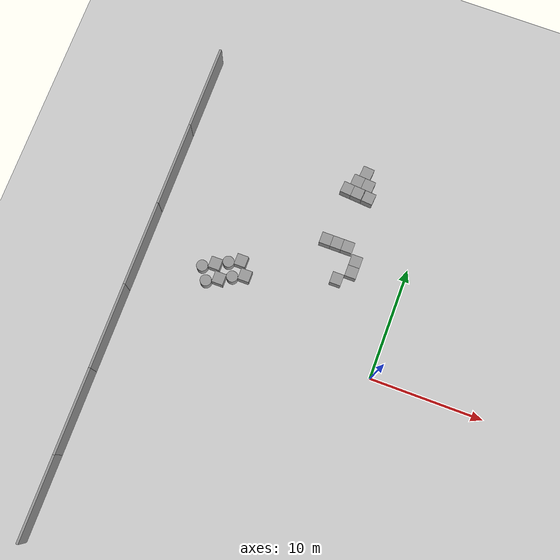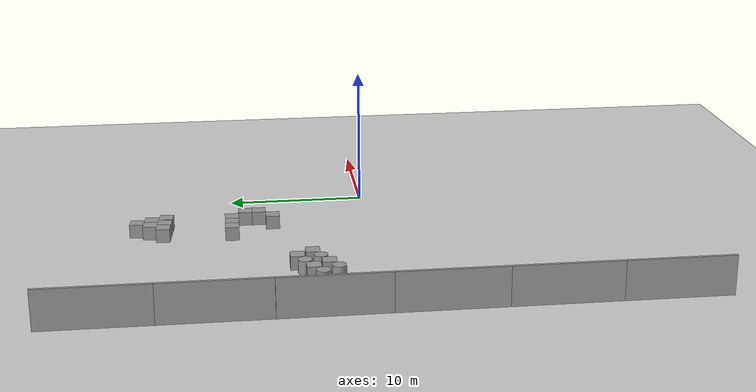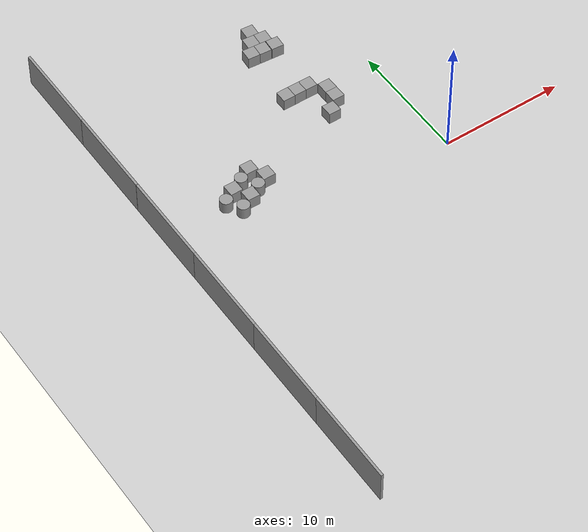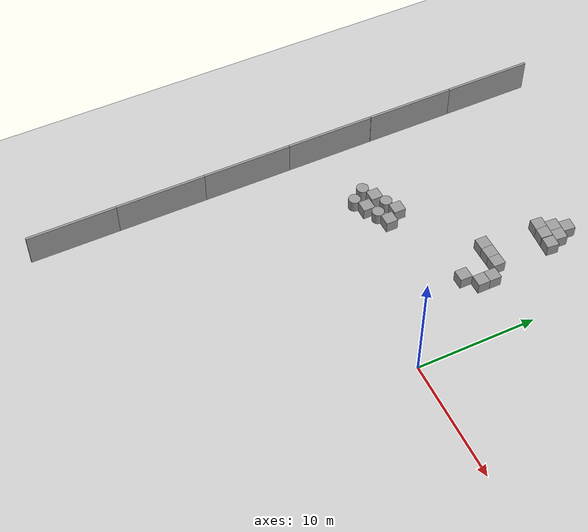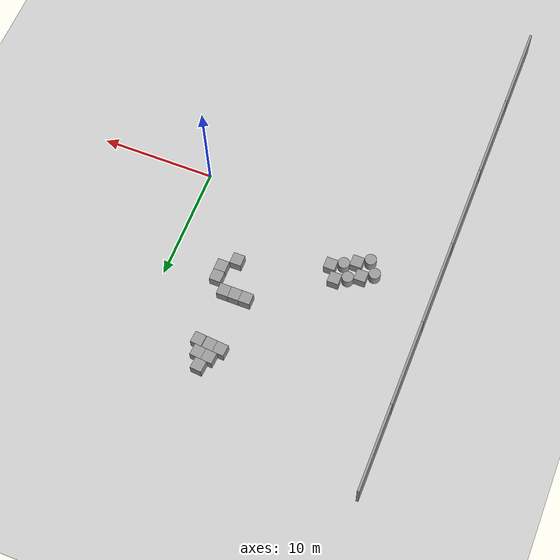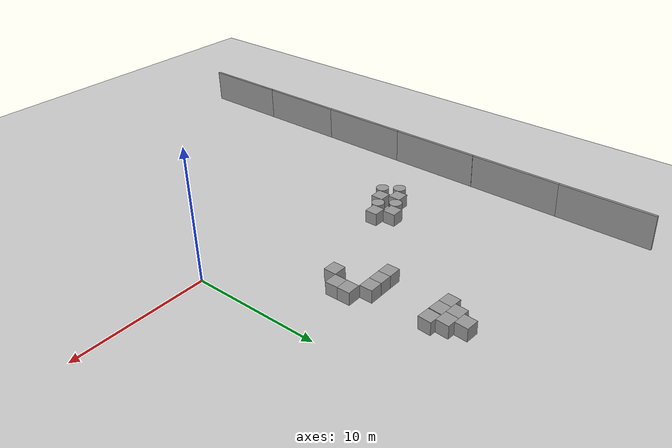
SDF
<sdf version="1.6">
 <world name="default">
  <model name="ground_plane">
   <static>1</static>
   <link name="link">
    <collision name="collision">
     <geometry><plane><normal>0 0 1</normal><size>100 100</size></plane></geometry>
     <surface><friction><ode><mu>100</mu><mu2>50</mu2></ode></friction></surface>
    </collision>
    <visual name="visual">
     <cast_shadows>0</cast_shadows>
     <geometry><plane><normal>0 0 1</normal><size>100 100</size></plane></geometry>
     <material>
      <script><uri>file://media/materials/scripts/gazebo.material</uri><name>Gazebo/Grey</name></script>
     </material>
    </visual>
   </link>
  </model>
  <model name="6walls_clone_clone">
   <model name="grey_wall">
    <static>1</static>
    <link name="link">
     <pose>0 0 1.4 0 -0 0</pose>
     <collision name="collision"><geometry><box><size>7.5 0.2 2.8</size></box></geometry></collision>
     <visual name="visual">
      <cast_shadows>0</cast_shadows>
      <geometry><box><size>7.5 0.2 2.8</size></box></geometry>
      <material>
       <script>
        <uri>model://grey_wall/materials/scripts</uri>
        <uri>model://grey_wall/materials/textures</uri>
        <name>vrc/grey_wall</name>
       </script>
      </material>
     </visual>
    </link>
    <pose>-18.6834 0 0 0 -0 0</pose>
   </model>
   <model name="grey_wall_0">
    <static>1</static>
    <link name="link">
     <pose>0 0 1.4 0 -0 0</pose>
     <collision name="collision"><geometry><box><size>7.5 0.2 2.8</size></box></geometry></collision>
     <visual name="visual">
      <cast_shadows>0</cast_shadows>
      <geometry><box><size>7.5 0.2 2.8</size></box></geometry>
      <material>
       <script>
        <uri>model://grey_wall/materials/scripts</uri>
        <uri>model://grey_wall/materials/textures</uri>
        <name>vrc/grey_wall</name>
       </script>
      </material>
     </visual>
    </link>
    <pose>-11.2658 0 0 0 -0 0</pose>
   </model>
   <model name="grey_wall_1">
    <static>1</static>
    <link name="link">
     <pose>0 0 1.4 0 -0 0</pose>
     <collision name="collision"><geometry><box><size>7.5 0.2 2.8</size></box></geometry></collision>
     <visual name="visual">
      <cast_shadows>0</cast_shadows>
      <geometry><box><size>7.5 0.2 2.8</size></box></geometry>
      <material>
       <script>
        <uri>model://grey_wall/materials/scripts</uri>
        <uri>model://grey_wall/materials/textures</uri>
        <name>vrc/grey_wall</name>
       </script>
      </material>
     </visual>
    </link>
    <pose>-3.76669 0 0 0 -0 0</pose>
   </model>
   <model name="grey_wall_2">
    <static>1</static>
    <link name="link">
     <pose>0 0 1.4 0 -0 0</pose>
     <collision name="collision"><geometry><box><size>7.5 0.2 2.8</size></box></geometry></collision>
     <visual name="visual">
      <cast_shadows>0</cast_shadows>
      <geometry><box><size>7.5 0.2 2.8</size></box></geometry>
      <material>
       <script>
        <uri>model://grey_wall/materials/scripts</uri>
        <uri>model://grey_wall/materials/textures</uri>
        <name>vrc/grey_wall</name>
       </script>
      </material>
     </visual>
    </link>
    <pose>3.73421 0 0 0 -0 0</pose>
   </model>
   <model name="grey_wall_3">
    <static>1</static>
    <link name="link">
     <pose>0 0 1.4 0 -0 0</pose>
     <collision name="collision"><geometry><box><size>7.5 0.2 2.8</size></box></geometry></collision>
     <visual name="visual">
      <cast_shadows>0</cast_shadows>
      <geometry><box><size>7.5 0.2 2.8</size></box></geometry>
      <material>
       <script>
        <uri>model://grey_wall/materials/scripts</uri>
        <uri>model://grey_wall/materials/textures</uri>
        <name>vrc/grey_wall</name>
       </script>
      </material>
     </visual>
    </link>
    <pose>11.2475 0 0 0 -0 0</pose>
   </model>
   <model name="grey_wall_4">
    <static>1</static>
    <link name="link">
     <pose>0 0 1.4 0 -0 0</pose>
     <collision name="collision"><geometry><box><size>7.5 0.2 2.8</size></box></geometry></collision>
     <visual name="visual">
      <cast_shadows>0</cast_shadows>
      <geometry><box><size>7.5 0.2 2.8</size></box></geometry>
      <material>
       <script>
        <uri>model://grey_wall/materials/scripts</uri>
        <uri>model://grey_wall/materials/textures</uri>
        <name>vrc/grey_wall</name>
       </script>
      </material>
     </visual>
    </link>
    <pose>18.7342 0 0 0 -0 0</pose>
   </model>
   <static>0</static>
   <pose>-22 0 0 0 -0 1.5708</pose>
  </model>
  <model name="machin4">
   <link name="link_19">
    <pose>0.127295 1 0 0 -0 0</pose>
    <inertial>
     <mass>1</mass>
     <inertia>
      <ixx>0.166667</ixx>
      <ixy>0</ixy>
      <ixz>0</ixz>
      <iyy>0.166667</iyy>
      <iyz>0</iyz>
      <izz>0.166667</izz>
     </inertia>
    </inertial>
    <visual name="visual">
     <geometry><box><size>1 1 1</size></box></geometry>
     <material>
      <lighting>1</lighting>
      <script><uri>file://media/materials/scripts/gazebo.material</uri><name>Gazebo/Grey</name></script>
      <ambient>0.3 0.3 0.3 1</ambient>
      <diffuse>0.7 0.7 0.7 1</diffuse>
      <specular>0.01 0.01 0.01 1</specular>
      <emissive>0 0 0 1</emissive>
     </material>
    </visual>
    <collision name="collision">
     <geometry><box><size>1 1 1</size></box></geometry>
     <surface>
      <friction>
       <ode><mu>1</mu><mu2>1</mu2><fdir1>0 0 0</fdir1><slip1>0</slip1><slip2>0</slip2></ode>
       <torsional>
        <coefficient>1</coefficient>
        <patch_radius>0</patch_radius>
        <surface_radius>0</surface_radius>
        <use_patch_radius>1</use_patch_radius>
        <ode><slip>0</slip></ode>
       </torsional>
      </friction>
      <bounce><restitution_coefficient>0</restitution_coefficient><threshold>1e+06</threshold></bounce>
      <contact>
       <collide_without_contact>0</collide_without_contact>
       <collide_without_contact_bitmask>1</collide_without_contact_bitmask>
       <collide_bitmask>1</collide_bitmask>
       <ode>
        <soft_cfm>0</soft_cfm>
        <soft_erp>0.2</soft_erp>
        <kp>1e+13</kp>
        <kd>1</kd>
        <max_vel>0.01</max_vel>
        <min_depth>0</min_depth>
       </ode>
       <bullet>
        <split_impulse>1</split_impulse>
        <split_impulse_penetration_threshold>-0.01</split_impulse_penetration_threshold>
        <soft_cfm>0</soft_cfm>
        <soft_erp>0.2</soft_erp>
        <kp>1e+13</kp>
        <kd>1</kd>
       </bullet>
      </contact>
     </surface>
    </collision>
   </link>
   <link name="link_20">
    <pose>-0.843938 1 0 0 -0 0</pose>
    <inertial>
     <mass>1</mass>
     <inertia>
      <ixx>0.166667</ixx>
      <ixy>0</ixy>
      <ixz>0</ixz>
      <iyy>0.166667</iyy>
      <iyz>0</iyz>
      <izz>0.166667</izz>
     </inertia>
    </inertial>
    <visual name="visual">
     <geometry><box><size>1 1 1</size></box></geometry>
     <material>
      <lighting>1</lighting>
      <script><uri>file://media/materials/scripts/gazebo.material</uri><name>Gazebo/Grey</name></script>
      <ambient>0.3 0.3 0.3 1</ambient>
      <diffuse>0.7 0.7 0.7 1</diffuse>
      <specular>0.01 0.01 0.01 1</specular>
      <emissive>0 0 0 1</emissive>
     </material>
    </visual>
    <collision name="collision">
     <geometry><box><size>1 1 1</size></box></geometry>
     <surface>
      <friction>
       <ode><mu>1</mu><mu2>1</mu2><fdir1>0 0 0</fdir1><slip1>0</slip1><slip2>0</slip2></ode>
       <torsional>
        <coefficient>1</coefficient>
        <patch_radius>0</patch_radius>
        <surface_radius>0</surface_radius>
        <use_patch_radius>1</use_patch_radius>
        <ode><slip>0</slip></ode>
       </torsional>
      </friction>
      <bounce><restitution_coefficient>0</restitution_coefficient><threshold>1e+06</threshold></bounce>
      <contact>
       <collide_without_contact>0</collide_without_contact>
       <collide_without_contact_bitmask>1</collide_without_contact_bitmask>
       <collide_bitmask>1</collide_bitmask>
       <ode>
        <soft_cfm>0</soft_cfm>
        <soft_erp>0.2</soft_erp>
        <kp>1e+13</kp>
        <kd>1</kd>
        <max_vel>0.01</max_vel>
        <min_depth>0</min_depth>
       </ode>
       <bullet>
        <split_impulse>1</split_impulse>
        <split_impulse_penetration_threshold>-0.01</split_impulse_penetration_threshold>
        <soft_cfm>0</soft_cfm>
        <soft_erp>0.2</soft_erp>
        <kp>1e+13</kp>
        <kd>1</kd>
       </bullet>
      </contact>
     </surface>
    </collision>
   </link>
   <link name="link_21">
    <pose>1.19236 0 0 0 -0 0</pose>
    <inertial>
     <mass>1</mass>
     <inertia>
      <ixx>0.166667</ixx>
      <ixy>0</ixy>
      <ixz>0</ixz>
      <iyy>0.166667</iyy>
      <iyz>0</iyz>
      <izz>0.166667</izz>
     </inertia>
    </inertial>
    <visual name="visual">
     <geometry><box><size>1 1 1</size></box></geometry>
     <material>
      <lighting>1</lighting>
      <script><uri>file://media/materials/scripts/gazebo.material</uri><name>Gazebo/Grey</name></script>
      <ambient>0.3 0.3 0.3 1</ambient>
      <diffuse>0.7 0.7 0.7 1</diffuse>
      <specular>0.01 0.01 0.01 1</specular>
      <emissive>0 0 0 1</emissive>
     </material>
    </visual>
    <collision name="collision">
     <geometry><box><size>1 1 1</size></box></geometry>
     <surface>
      <friction>
       <ode><mu>1</mu><mu2>1</mu2><fdir1>0 0 0</fdir1><slip1>0</slip1><slip2>0</slip2></ode>
       <torsional>
        <coefficient>1</coefficient>
        <patch_radius>0</patch_radius>
        <surface_radius>0</surface_radius>
        <use_patch_radius>1</use_patch_radius>
        <ode><slip>0</slip></ode>
       </torsional>
      </friction>
      <bounce><restitution_coefficient>0</restitution_coefficient><threshold>1e+06</threshold></bounce>
      <contact>
       <collide_without_contact>0</collide_without_contact>
       <collide_without_contact_bitmask>1</collide_without_contact_bitmask>
       <collide_bitmask>1</collide_bitmask>
       <ode>
        <soft_cfm>0</soft_cfm>
        <soft_erp>0.2</soft_erp>
        <kp>1e+13</kp>
        <kd>1</kd>
        <max_vel>0.01</max_vel>
        <min_depth>0</min_depth>
       </ode>
       <bullet>
        <split_impulse>1</split_impulse>
        <split_impulse_penetration_threshold>-0.01</split_impulse_penetration_threshold>
        <soft_cfm>0</soft_cfm>
        <soft_erp>0.2</soft_erp>
        <kp>1e+13</kp>
        <kd>1</kd>
       </bullet>
      </contact>
     </surface>
    </collision>
   </link>
   <link name="link_22">
    <pose>1.19278 -1 0 0 -0 0</pose>
    <inertial>
     <mass>1</mass>
     <inertia>
      <ixx>0.166667</ixx>
      <ixy>0</ixy>
      <ixz>0</ixz>
      <iyy>0.166667</iyy>
      <iyz>0</iyz>
      <izz>0.166667</izz>
     </inertia>
    </inertial>
    <visual name="visual">
     <geometry><box><size>1 1 1</size></box></geometry>
     <material>
      <lighting>1</lighting>
      <script><uri>file://media/materials/scripts/gazebo.material</uri><name>Gazebo/Grey</name></script>
      <ambient>0.3 0.3 0.3 1</ambient>
      <diffuse>0.7 0.7 0.7 1</diffuse>
      <specular>0.01 0.01 0.01 1</specular>
      <emissive>0 0 0 1</emissive>
     </material>
    </visual>
    <collision name="collision">
     <geometry><box><size>1 1 1</size></box></geometry>
     <surface>
      <friction>
       <ode><mu>1</mu><mu2>1</mu2><fdir1>0 0 0</fdir1><slip1>0</slip1><slip2>0</slip2></ode>
       <torsional>
        <coefficient>1</coefficient>
        <patch_radius>0</patch_radius>
        <surface_radius>0</surface_radius>
        <use_patch_radius>1</use_patch_radius>
        <ode><slip>0</slip></ode>
       </torsional>
      </friction>
      <bounce><restitution_coefficient>0</restitution_coefficient><threshold>1e+06</threshold></bounce>
      <contact>
       <collide_without_contact>0</collide_without_contact>
       <collide_without_contact_bitmask>1</collide_without_contact_bitmask>
       <collide_bitmask>1</collide_bitmask>
       <ode>
        <soft_cfm>0</soft_cfm>
        <soft_erp>0.2</soft_erp>
        <kp>1e+13</kp>
        <kd>1</kd>
        <max_vel>0.01</max_vel>
        <min_depth>0</min_depth>
       </ode>
       <bullet>
        <split_impulse>1</split_impulse>
        <split_impulse_penetration_threshold>-0.01</split_impulse_penetration_threshold>
        <soft_cfm>0</soft_cfm>
        <soft_erp>0.2</soft_erp>
        <kp>1e+13</kp>
        <kd>1</kd>
       </bullet>
      </contact>
     </surface>
    </collision>
   </link>
   <link name="link_23">
    <pose>0.174071 -2 0 0 -0 0</pose>
    <inertial>
     <mass>1</mass>
     <inertia>
      <ixx>0.166667</ixx>
      <ixy>0</ixy>
      <ixz>0</ixz>
      <iyy>0.166667</iyy>
      <iyz>0</iyz>
      <izz>0.166667</izz>
     </inertia>
    </inertial>
    <visual name="visual">
     <geometry><box><size>1 1 1</size></box></geometry>
     <material>
      <lighting>1</lighting>
      <script><uri>file://media/materials/scripts/gazebo.material</uri><name>Gazebo/Grey</name></script>
      <ambient>0.3 0.3 0.3 1</ambient>
      <diffuse>0.7 0.7 0.7 1</diffuse>
      <specular>0.01 0.01 0.01 1</specular>
      <emissive>0 0 0 1</emissive>
     </material>
    </visual>
    <collision name="collision">
     <geometry><box><size>1 1 1</size></box></geometry>
     <surface>
      <friction>
       <ode><mu>1</mu><mu2>1</mu2><fdir1>0 0 0</fdir1><slip1>0</slip1><slip2>0</slip2></ode>
       <torsional>
        <coefficient>1</coefficient>
        <patch_radius>0</patch_radius>
        <surface_radius>0</surface_radius>
        <use_patch_radius>1</use_patch_radius>
        <ode><slip>0</slip></ode>
       </torsional>
      </friction>
      <bounce><restitution_coefficient>0</restitution_coefficient><threshold>1e+06</threshold></bounce>
      <contact>
       <collide_without_contact>0</collide_without_contact>
       <collide_without_contact_bitmask>1</collide_without_contact_bitmask>
       <collide_bitmask>1</collide_bitmask>
       <ode>
        <soft_cfm>0</soft_cfm>
        <soft_erp>0.2</soft_erp>
        <kp>1e+13</kp>
        <kd>1</kd>
        <max_vel>0.01</max_vel>
        <min_depth>0</min_depth>
       </ode>
       <bullet>
        <split_impulse>1</split_impulse>
        <split_impulse_penetration_threshold>-0.01</split_impulse_penetration_threshold>
        <soft_cfm>0</soft_cfm>
        <soft_erp>0.2</soft_erp>
        <kp>1e+13</kp>
        <kd>1</kd>
       </bullet>
      </contact>
     </surface>
    </collision>
   </link>
   <link name="link_24">
    <pose>-1.84258 1 0 0 -0 0</pose>
    <inertial>
     <mass>1</mass>
     <inertia>
      <ixx>0.166667</ixx>
      <ixy>0</ixy>
      <ixz>0</ixz>
      <iyy>0.166667</iyy>
      <iyz>0</iyz>
      <izz>0.166667</izz>
     </inertia>
    </inertial>
    <visual name="visual">
     <geometry><box><size>1 1 1</size></box></geometry>
     <material>
      <lighting>1</lighting>
      <script><uri>file://media/materials/scripts/gazebo.material</uri><name>Gazebo/Grey</name></script>
      <ambient>0.3 0.3 0.3 1</ambient>
      <diffuse>0.7 0.7 0.7 1</diffuse>
      <specular>0.01 0.01 0.01 1</specular>
      <emissive>0 0 0 1</emissive>
     </material>
    </visual>
    <collision name="collision">
     <geometry><box><size>1 1 1</size></box></geometry>
     <surface>
      <friction>
       <ode><mu>1</mu><mu2>1</mu2><fdir1>0 0 0</fdir1><slip1>0</slip1><slip2>0</slip2></ode>
       <torsional>
        <coefficient>1</coefficient>
        <patch_radius>0</patch_radius>
        <surface_radius>0</surface_radius>
        <use_patch_radius>1</use_patch_radius>
        <ode><slip>0</slip></ode>
       </torsional>
      </friction>
      <bounce><restitution_coefficient>0</restitution_coefficient><threshold>1e+06</threshold></bounce>
      <contact>
       <collide_without_contact>0</collide_without_contact>
       <collide_without_contact_bitmask>1</collide_without_contact_bitmask>
       <collide_bitmask>1</collide_bitmask>
       <ode>
        <soft_cfm>0</soft_cfm>
        <soft_erp>0.2</soft_erp>
        <kp>1e+13</kp>
        <kd>1</kd>
        <max_vel>0.01</max_vel>
        <min_depth>0</min_depth>
       </ode>
       <bullet>
        <split_impulse>1</split_impulse>
        <split_impulse_penetration_threshold>-0.01</split_impulse_penetration_threshold>
        <soft_cfm>0</soft_cfm>
        <soft_erp>0.2</soft_erp>
        <kp>1e+13</kp>
        <kd>1</kd>
       </bullet>
      </contact>
     </surface>
    </collision>
   </link>
   <static>0</static>
   <pose>-5.69507 9 0.5 0 -0 0</pose>
  </model>
  <model name="machine6_clone">
   <link name="link_32">
    <pose>-0.5 -0.233197 0 0 -0 0</pose>
    <inertial>
     <mass>1</mass>
     <inertia>
      <ixx>0.166667</ixx>
      <ixy>0</ixy>
      <ixz>0</ixz>
      <iyy>0.166667</iyy>
      <iyz>0</iyz>
      <izz>0.166667</izz>
     </inertia>
    </inertial>
    <visual name="visual">
     <geometry><box><size>1 1 1</size></box></geometry>
     <material>
      <lighting>1</lighting>
      <script><uri>file://media/materials/scripts/gazebo.material</uri><name>Gazebo/Grey</name></script>
      <ambient>0.3 0.3 0.3 1</ambient>
      <diffuse>0.7 0.7 0.7 1</diffuse>
      <specular>0.01 0.01 0.01 1</specular>
      <emissive>0 0 0 1</emissive>
     </material>
    </visual>
    <collision name="collision">
     <geometry><box><size>1 1 1</size></box></geometry>
     <surface>
      <friction>
       <ode><mu>1</mu><mu2>1</mu2><fdir1>0 0 0</fdir1><slip1>0</slip1><slip2>0</slip2></ode>
       <torsional>
        <coefficient>1</coefficient>
        <patch_radius>0</patch_radius>
        <surface_radius>0</surface_radius>
        <use_patch_radius>1</use_patch_radius>
        <ode><slip>0</slip></ode>
       </torsional>
      </friction>
      <bounce><restitution_coefficient>0</restitution_coefficient><threshold>1e+06</threshold></bounce>
      <contact>
       <collide_without_contact>0</collide_without_contact>
       <collide_without_contact_bitmask>1</collide_without_contact_bitmask>
       <collide_bitmask>1</collide_bitmask>
       <ode>
        <soft_cfm>0</soft_cfm>
        <soft_erp>0.2</soft_erp>
        <kp>1e+13</kp>
        <kd>1</kd>
        <max_vel>0.01</max_vel>
        <min_depth>0</min_depth>
       </ode>
       <bullet>
        <split_impulse>1</split_impulse>
        <split_impulse_penetration_threshold>-0.01</split_impulse_penetration_threshold>
        <soft_cfm>0</soft_cfm>
        <soft_erp>0.2</soft_erp>
        <kp>1e+13</kp>
        <kd>1</kd>
       </bullet>
      </contact>
     </surface>
    </collision>
   </link>
   <link name="link_33">
    <pose>0.5 0.283618 0 0 -0 0</pose>
    <inertial>
     <mass>1</mass>
     <inertia><ixx>0.145833</ixx><ixy>0</ixy><ixz>0</ixz><iyy>0.145833</iyy><iyz>0</iyz><izz>0.125</izz></inertia>
    </inertial>
    <visual name="visual">
     <geometry><cylinder><radius>0.5</radius><length>1</length></cylinder></geometry>
     <material>
      <lighting>1</lighting>
      <script><uri>file://media/materials/scripts/gazebo.material</uri><name>Gazebo/Grey</name></script>
      <ambient>0.3 0.3 0.3 1</ambient>
      <diffuse>0.7 0.7 0.7 1</diffuse>
      <specular>0.01 0.01 0.01 1</specular>
      <emissive>0 0 0 1</emissive>
     </material>
    </visual>
    <collision name="collision">
     <geometry><cylinder><radius>0.5</radius><length>1</length></cylinder></geometry>
     <surface>
      <friction>
       <ode><mu>1</mu><mu2>1</mu2><fdir1>0 0 0</fdir1><slip1>0</slip1><slip2>0</slip2></ode>
       <torsional>
        <coefficient>1</coefficient>
        <patch_radius>0</patch_radius>
        <surface_radius>0</surface_radius>
        <use_patch_radius>1</use_patch_radius>
        <ode><slip>0</slip></ode>
       </torsional>
      </friction>
      <bounce><restitution_coefficient>0</restitution_coefficient><threshold>1e+06</threshold></bounce>
      <contact>
       <collide_without_contact>0</collide_without_contact>
       <collide_without_contact_bitmask>1</collide_without_contact_bitmask>
       <collide_bitmask>1</collide_bitmask>
       <ode>
        <soft_cfm>0</soft_cfm>
        <soft_erp>0.2</soft_erp>
        <kp>1e+13</kp>
        <kd>1</kd>
        <max_vel>0.01</max_vel>
        <min_depth>0</min_depth>
       </ode>
       <bullet>
        <split_impulse>1</split_impulse>
        <split_impulse_penetration_threshold>-0.01</split_impulse_penetration_threshold>
        <soft_cfm>0</soft_cfm>
        <soft_erp>0.2</soft_erp>
        <kp>1e+13</kp>
        <kd>1</kd>
       </bullet>
      </contact>
     </surface>
    </collision>
   </link>
   <link name="link_34">
    <pose>-1.5 -0.817224 0 0 -0 0</pose>
    <inertial>
     <mass>1</mass>
     <inertia><ixx>0.145833</ixx><ixy>0</ixy><ixz>0</ixz><iyy>0.145833</iyy><iyz>0</iyz><izz>0.125</izz></inertia>
    </inertial>
    <visual name="visual">
     <geometry><cylinder><radius>0.5</radius><length>1</length></cylinder></geometry>
     <material>
      <lighting>1</lighting>
      <script><uri>file://media/materials/scripts/gazebo.material</uri><name>Gazebo/Grey</name></script>
      <ambient>0.3 0.3 0.3 1</ambient>
      <diffuse>0.7 0.7 0.7 1</diffuse>
      <specular>0.01 0.01 0.01 1</specular>
      <emissive>0 0 0 1</emissive>
     </material>
    </visual>
    <collision name="collision">
     <geometry><cylinder><radius>0.5</radius><length>1</length></cylinder></geometry>
     <surface>
      <friction>
       <ode><mu>1</mu><mu2>1</mu2><fdir1>0 0 0</fdir1><slip1>0</slip1><slip2>0</slip2></ode>
       <torsional>
        <coefficient>1</coefficient>
        <patch_radius>0</patch_radius>
        <surface_radius>0</surface_radius>
        <use_patch_radius>1</use_patch_radius>
        <ode><slip>0</slip></ode>
       </torsional>
      </friction>
      <bounce><restitution_coefficient>0</restitution_coefficient><threshold>1e+06</threshold></bounce>
      <contact>
       <collide_without_contact>0</collide_without_contact>
       <collide_without_contact_bitmask>1</collide_without_contact_bitmask>
       <collide_bitmask>1</collide_bitmask>
       <ode>
        <soft_cfm>0</soft_cfm>
        <soft_erp>0.2</soft_erp>
        <kp>1e+13</kp>
        <kd>1</kd>
        <max_vel>0.01</max_vel>
        <min_depth>0</min_depth>
       </ode>
       <bullet>
        <split_impulse>1</split_impulse>
        <split_impulse_penetration_threshold>-0.01</split_impulse_penetration_threshold>
        <soft_cfm>0</soft_cfm>
        <soft_erp>0.2</soft_erp>
        <kp>1e+13</kp>
        <kd>1</kd>
       </bullet>
      </contact>
     </surface>
    </collision>
   </link>
   <link name="link_35">
    <pose>1.5 0.766803 0 0 -0 0</pose>
    <inertial>
     <mass>1</mass>
     <inertia>
      <ixx>0.166667</ixx>
      <ixy>0</ixy>
      <ixz>0</ixz>
      <iyy>0.166667</iyy>
      <iyz>0</iyz>
      <izz>0.166667</izz>
     </inertia>
    </inertial>
    <visual name="visual">
     <geometry><box><size>1 1 1</size></box></geometry>
     <material>
      <lighting>1</lighting>
      <script><uri>file://media/materials/scripts/gazebo.material</uri><name>Gazebo/Grey</name></script>
      <ambient>0.3 0.3 0.3 1</ambient>
      <diffuse>0.7 0.7 0.7 1</diffuse>
      <specular>0.01 0.01 0.01 1</specular>
      <emissive>0 0 0 1</emissive>
     </material>
    </visual>
    <collision name="collision">
     <geometry><box><size>1 1 1</size></box></geometry>
     <surface>
      <friction>
       <ode><mu>1</mu><mu2>1</mu2><fdir1>0 0 0</fdir1><slip1>0</slip1><slip2>0</slip2></ode>
       <torsional>
        <coefficient>1</coefficient>
        <patch_radius>0</patch_radius>
        <surface_radius>0</surface_radius>
        <use_patch_radius>1</use_patch_radius>
        <ode><slip>0</slip></ode>
       </torsional>
      </friction>
      <bounce><restitution_coefficient>0</restitution_coefficient><threshold>1e+06</threshold></bounce>
      <contact>
       <collide_without_contact>0</collide_without_contact>
       <collide_without_contact_bitmask>1</collide_without_contact_bitmask>
       <collide_bitmask>1</collide_bitmask>
       <ode>
        <soft_cfm>0</soft_cfm>
        <soft_erp>0.2</soft_erp>
        <kp>1e+13</kp>
        <kd>1</kd>
        <max_vel>0.01</max_vel>
        <min_depth>0</min_depth>
       </ode>
       <bullet>
        <split_impulse>1</split_impulse>
        <split_impulse_penetration_threshold>-0.01</split_impulse_penetration_threshold>
        <soft_cfm>0</soft_cfm>
        <soft_erp>0.2</soft_erp>
        <kp>1e+13</kp>
        <kd>1</kd>
       </bullet>
      </contact>
     </surface>
    </collision>
   </link>
   <static>0</static>
   <pose>-14.4869 3.78106 0.5 0 -0 0</pose>
  </model>
  <model name="machine1_clone_0">
   <link name="link_0">
    <pose>0.666667 -1.0048 0 0 -0 0</pose>
    <inertial>
     <mass>1</mass>
     <inertia>
      <ixx>0.166667</ixx>
      <ixy>0</ixy>
      <ixz>0</ixz>
      <iyy>0.166667</iyy>
      <iyz>0</iyz>
      <izz>0.166667</izz>
     </inertia>
    </inertial>
    <visual name="visual">
     <geometry><box><size>1 1 1</size></box></geometry>
     <material>
      <lighting>1</lighting>
      <script><uri>file://media/materials/scripts/gazebo.material</uri><name>Gazebo/Grey</name></script>
      <ambient>0.3 0.3 0.3 1</ambient>
      <diffuse>0.7 0.7 0.7 1</diffuse>
      <specular>0.01 0.01 0.01 1</specular>
      <emissive>0 0 0 1</emissive>
     </material>
    </visual>
    <collision name="collision">
     <geometry><box><size>1 1 1</size></box></geometry>
     <surface>
      <friction>
       <ode><mu>1</mu><mu2>1</mu2><fdir1>0 0 0</fdir1><slip1>0</slip1><slip2>0</slip2></ode>
       <torsional>
        <coefficient>1</coefficient>
        <patch_radius>0</patch_radius>
        <surface_radius>0</surface_radius>
        <use_patch_radius>1</use_patch_radius>
        <ode><slip>0</slip></ode>
       </torsional>
      </friction>
      <bounce><restitution_coefficient>0</restitution_coefficient><threshold>1e+06</threshold></bounce>
      <contact>
       <collide_without_contact>0</collide_without_contact>
       <collide_without_contact_bitmask>1</collide_without_contact_bitmask>
       <collide_bitmask>1</collide_bitmask>
       <ode>
        <soft_cfm>0</soft_cfm>
        <soft_erp>0.2</soft_erp>
        <kp>1e+13</kp>
        <kd>1</kd>
        <max_vel>0.01</max_vel>
        <min_depth>0</min_depth>
       </ode>
       <bullet>
        <split_impulse>1</split_impulse>
        <split_impulse_penetration_threshold>-0.01</split_impulse_penetration_threshold>
        <soft_cfm>0</soft_cfm>
        <soft_erp>0.2</soft_erp>
        <kp>1e+13</kp>
        <kd>1</kd>
       </bullet>
      </contact>
     </surface>
    </collision>
   </link>
   <link name="link_1">
    <pose>0.666667 -0.036067 0 0 -0 0</pose>
    <inertial>
     <mass>1</mass>
     <inertia>
      <ixx>0.166667</ixx>
      <ixy>0</ixy>
      <ixz>0</ixz>
      <iyy>0.166667</iyy>
      <iyz>0</iyz>
      <izz>0.166667</izz>
     </inertia>
    </inertial>
    <visual name="visual">
     <geometry><box><size>1 1 1</size></box></geometry>
     <material>
      <lighting>1</lighting>
      <script><uri>file://media/materials/scripts/gazebo.material</uri><name>Gazebo/Grey</name></script>
      <ambient>0.3 0.3 0.3 1</ambient>
      <diffuse>0.7 0.7 0.7 1</diffuse>
      <specular>0.01 0.01 0.01 1</specular>
      <emissive>0 0 0 1</emissive>
     </material>
    </visual>
    <collision name="collision">
     <geometry><box><size>1 1 1</size></box></geometry>
     <surface>
      <friction>
       <ode><mu>1</mu><mu2>1</mu2><fdir1>0 0 0</fdir1><slip1>0</slip1><slip2>0</slip2></ode>
       <torsional>
        <coefficient>1</coefficient>
        <patch_radius>0</patch_radius>
        <surface_radius>0</surface_radius>
        <use_patch_radius>1</use_patch_radius>
        <ode><slip>0</slip></ode>
       </torsional>
      </friction>
      <bounce><restitution_coefficient>0</restitution_coefficient><threshold>1e+06</threshold></bounce>
      <contact>
       <collide_without_contact>0</collide_without_contact>
       <collide_without_contact_bitmask>1</collide_without_contact_bitmask>
       <collide_bitmask>1</collide_bitmask>
       <ode>
        <soft_cfm>0</soft_cfm>
        <soft_erp>0.2</soft_erp>
        <kp>1e+13</kp>
        <kd>1</kd>
        <max_vel>0.01</max_vel>
        <min_depth>0</min_depth>
       </ode>
       <bullet>
        <split_impulse>1</split_impulse>
        <split_impulse_penetration_threshold>-0.01</split_impulse_penetration_threshold>
        <soft_cfm>0</soft_cfm>
        <soft_erp>0.2</soft_erp>
        <kp>1e+13</kp>
        <kd>1</kd>
       </bullet>
      </contact>
     </surface>
    </collision>
   </link>
   <link name="link_2">
    <pose>0.666667 1.00722 0 0 -0 0</pose>
    <inertial>
     <mass>1</mass>
     <inertia>
      <ixx>0.166667</ixx>
      <ixy>0</ixy>
      <ixz>0</ixz>
      <iyy>0.166667</iyy>
      <iyz>0</iyz>
      <izz>0.166667</izz>
     </inertia>
    </inertial>
    <visual name="visual">
     <geometry><box><size>1 1 1</size></box></geometry>
     <material>
      <lighting>1</lighting>
      <script><uri>file://media/materials/scripts/gazebo.material</uri><name>Gazebo/Grey</name></script>
      <ambient>0.3 0.3 0.3 1</ambient>
      <diffuse>0.7 0.7 0.7 1</diffuse>
      <specular>0.01 0.01 0.01 1</specular>
      <emissive>0 0 0 1</emissive>
     </material>
    </visual>
    <collision name="collision">
     <geometry><box><size>1 1 1</size></box></geometry>
     <surface>
      <friction>
       <ode><mu>1</mu><mu2>1</mu2><fdir1>0 0 0</fdir1><slip1>0</slip1><slip2>0</slip2></ode>
       <torsional>
        <coefficient>1</coefficient>
        <patch_radius>0</patch_radius>
        <surface_radius>0</surface_radius>
        <use_patch_radius>1</use_patch_radius>
        <ode><slip>0</slip></ode>
       </torsional>
      </friction>
      <bounce><restitution_coefficient>0</restitution_coefficient><threshold>1e+06</threshold></bounce>
      <contact>
       <collide_without_contact>0</collide_without_contact>
       <collide_without_contact_bitmask>1</collide_without_contact_bitmask>
       <collide_bitmask>1</collide_bitmask>
       <ode>
        <soft_cfm>0</soft_cfm>
        <soft_erp>0.2</soft_erp>
        <kp>1e+13</kp>
        <kd>1</kd>
        <max_vel>0.01</max_vel>
        <min_depth>0</min_depth>
       </ode>
       <bullet>
        <split_impulse>1</split_impulse>
        <split_impulse_penetration_threshold>-0.01</split_impulse_penetration_threshold>
        <soft_cfm>0</soft_cfm>
        <soft_erp>0.2</soft_erp>
        <kp>1e+13</kp>
        <kd>1</kd>
       </bullet>
      </contact>
     </surface>
    </collision>
   </link>
   <link name="link_3">
    <pose>-0.333333 0.53488 0 0 -0 0</pose>
    <inertial>
     <mass>1</mass>
     <inertia>
      <ixx>0.166667</ixx>
      <ixy>0</ixy>
      <ixz>0</ixz>
      <iyy>0.166667</iyy>
      <iyz>0</iyz>
      <izz>0.166667</izz>
     </inertia>
    </inertial>
    <visual name="visual">
     <geometry><box><size>1 1 1</size></box></geometry>
     <material>
      <lighting>1</lighting>
      <script><uri>file://media/materials/scripts/gazebo.material</uri><name>Gazebo/Grey</name></script>
      <ambient>0.3 0.3 0.3 1</ambient>
      <diffuse>0.7 0.7 0.7 1</diffuse>
      <specular>0.01 0.01 0.01 1</specular>
      <emissive>0 0 0 1</emissive>
     </material>
    </visual>
    <collision name="collision">
     <geometry><box><size>1 1 1</size></box></geometry>
     <surface>
      <friction>
       <ode><mu>1</mu><mu2>1</mu2><fdir1>0 0 0</fdir1><slip1>0</slip1><slip2>0</slip2></ode>
       <torsional>
        <coefficient>1</coefficient>
        <patch_radius>0</patch_radius>
        <surface_radius>0</surface_radius>
        <use_patch_radius>1</use_patch_radius>
        <ode><slip>0</slip></ode>
       </torsional>
      </friction>
      <bounce><restitution_coefficient>0</restitution_coefficient><threshold>1e+06</threshold></bounce>
      <contact>
       <collide_without_contact>0</collide_without_contact>
       <collide_without_contact_bitmask>1</collide_without_contact_bitmask>
       <collide_bitmask>1</collide_bitmask>
       <ode>
        <soft_cfm>0</soft_cfm>
        <soft_erp>0.2</soft_erp>
        <kp>1e+13</kp>
        <kd>1</kd>
        <max_vel>0.01</max_vel>
        <min_depth>0</min_depth>
       </ode>
       <bullet>
        <split_impulse>1</split_impulse>
        <split_impulse_penetration_threshold>-0.01</split_impulse_penetration_threshold>
        <soft_cfm>0</soft_cfm>
        <soft_erp>0.2</soft_erp>
        <kp>1e+13</kp>
        <kd>1</kd>
       </bullet>
      </contact>
     </surface>
    </collision>
   </link>
   <link name="link_4">
    <pose>-0.333333 -0.46512 0 0 -0 0</pose>
    <inertial>
     <mass>1</mass>
     <inertia>
      <ixx>0.166667</ixx>
      <ixy>0</ixy>
      <ixz>0</ixz>
      <iyy>0.166667</iyy>
      <iyz>0</iyz>
      <izz>0.166667</izz>
     </inertia>
    </inertial>
    <visual name="visual">
     <geometry><box><size>1 1 1</size></box></geometry>
     <material>
      <lighting>1</lighting>
      <script><uri>file://media/materials/scripts/gazebo.material</uri><name>Gazebo/Grey</name></script>
      <ambient>0.3 0.3 0.3 1</ambient>
      <diffuse>0.7 0.7 0.7 1</diffuse>
      <specular>0.01 0.01 0.01 1</specular>
      <emissive>0 0 0 1</emissive>
     </material>
    </visual>
    <collision name="collision">
     <geometry><box><size>1 1 1</size></box></geometry>
     <surface>
      <friction>
       <ode><mu>1</mu><mu2>1</mu2><fdir1>0 0 0</fdir1><slip1>0</slip1><slip2>0</slip2></ode>
       <torsional>
        <coefficient>1</coefficient>
        <patch_radius>0</patch_radius>
        <surface_radius>0</surface_radius>
        <use_patch_radius>1</use_patch_radius>
        <ode><slip>0</slip></ode>
       </torsional>
      </friction>
      <bounce><restitution_coefficient>0</restitution_coefficient><threshold>1e+06</threshold></bounce>
      <contact>
       <collide_without_contact>0</collide_without_contact>
       <collide_without_contact_bitmask>1</collide_without_contact_bitmask>
       <collide_bitmask>1</collide_bitmask>
       <ode>
        <soft_cfm>0</soft_cfm>
        <soft_erp>0.2</soft_erp>
        <kp>1e+13</kp>
        <kd>1</kd>
        <max_vel>0.01</max_vel>
        <min_depth>0</min_depth>
       </ode>
       <bullet>
        <split_impulse>1</split_impulse>
        <split_impulse_penetration_threshold>-0.01</split_impulse_penetration_threshold>
        <soft_cfm>0</soft_cfm>
        <soft_erp>0.2</soft_erp>
        <kp>1e+13</kp>
        <kd>1</kd>
       </bullet>
      </contact>
     </surface>
    </collision>
   </link>
   <link name="link_5">
    <pose>-1.33333 -0.036128 0 0 -0 0</pose>
    <inertial>
     <mass>1</mass>
     <inertia>
      <ixx>0.166667</ixx>
      <ixy>0</ixy>
      <ixz>0</ixz>
      <iyy>0.166667</iyy>
      <iyz>0</iyz>
      <izz>0.166667</izz>
     </inertia>
    </inertial>
    <visual name="visual">
     <geometry><box><size>1 1 1</size></box></geometry>
     <material>
      <lighting>1</lighting>
      <script><uri>file://media/materials/scripts/gazebo.material</uri><name>Gazebo/Grey</name></script>
      <ambient>0.3 0.3 0.3 1</ambient>
      <diffuse>0.7 0.7 0.7 1</diffuse>
      <specular>0.01 0.01 0.01 1</specular>
      <emissive>0 0 0 1</emissive>
     </material>
    </visual>
    <collision name="collision">
     <geometry><box><size>1 1 1</size></box></geometry>
     <surface>
      <friction>
       <ode><mu>1</mu><mu2>1</mu2><fdir1>0 0 0</fdir1><slip1>0</slip1><slip2>0</slip2></ode>
       <torsional>
        <coefficient>1</coefficient>
        <patch_radius>0</patch_radius>
        <surface_radius>0</surface_radius>
        <use_patch_radius>1</use_patch_radius>
        <ode><slip>0</slip></ode>
       </torsional>
      </friction>
      <bounce><restitution_coefficient>0</restitution_coefficient><threshold>1e+06</threshold></bounce>
      <contact>
       <collide_without_contact>0</collide_without_contact>
       <collide_without_contact_bitmask>1</collide_without_contact_bitmask>
       <collide_bitmask>1</collide_bitmask>
       <ode>
        <soft_cfm>0</soft_cfm>
        <soft_erp>0.2</soft_erp>
        <kp>1e+13</kp>
        <kd>1</kd>
        <max_vel>0.01</max_vel>
        <min_depth>0</min_depth>
       </ode>
       <bullet>
        <split_impulse>1</split_impulse>
        <split_impulse_penetration_threshold>-0.01</split_impulse_penetration_threshold>
        <soft_cfm>0</soft_cfm>
        <soft_erp>0.2</soft_erp>
        <kp>1e+13</kp>
        <kd>1</kd>
       </bullet>
      </contact>
     </surface>
    </collision>
   </link>
   <static>0</static>
   <pose>-6.26998 15.517 0.5 0 0 -1.65</pose>
  </model>
  <model name="machine6_0">
   <link name="link_32">
    <pose>-0.5 -0.233197 0 0 -0 0</pose>
    <inertial>
     <mass>1</mass>
     <inertia>
      <ixx>0.166667</ixx>
      <ixy>0</ixy>
      <ixz>0</ixz>
      <iyy>0.166667</iyy>
      <iyz>0</iyz>
      <izz>0.166667</izz>
     </inertia>
    </inertial>
    <visual name="visual">
     <geometry><box><size>1 1 1</size></box></geometry>
     <material>
      <lighting>1</lighting>
      <script><uri>file://media/materials/scripts/gazebo.material</uri><name>Gazebo/Grey</name></script>
      <ambient>0.3 0.3 0.3 1</ambient>
      <diffuse>0.7 0.7 0.7 1</diffuse>
      <specular>0.01 0.01 0.01 1</specular>
      <emissive>0 0 0 1</emissive>
     </material>
    </visual>
    <collision name="collision">
     <geometry><box><size>1 1 1</size></box></geometry>
     <surface>
      <friction>
       <ode><mu>1</mu><mu2>1</mu2><fdir1>0 0 0</fdir1><slip1>0</slip1><slip2>0</slip2></ode>
       <torsional>
        <coefficient>1</coefficient>
        <patch_radius>0</patch_radius>
        <surface_radius>0</surface_radius>
        <use_patch_radius>1</use_patch_radius>
        <ode><slip>0</slip></ode>
       </torsional>
      </friction>
      <bounce><restitution_coefficient>0</restitution_coefficient><threshold>1e+06</threshold></bounce>
      <contact>
       <collide_without_contact>0</collide_without_contact>
       <collide_without_contact_bitmask>1</collide_without_contact_bitmask>
       <collide_bitmask>1</collide_bitmask>
       <ode>
        <soft_cfm>0</soft_cfm>
        <soft_erp>0.2</soft_erp>
        <kp>1e+13</kp>
        <kd>1</kd>
        <max_vel>0.01</max_vel>
        <min_depth>0</min_depth>
       </ode>
       <bullet>
        <split_impulse>1</split_impulse>
        <split_impulse_penetration_threshold>-0.01</split_impulse_penetration_threshold>
        <soft_cfm>0</soft_cfm>
        <soft_erp>0.2</soft_erp>
        <kp>1e+13</kp>
        <kd>1</kd>
       </bullet>
      </contact>
     </surface>
    </collision>
   </link>
   <link name="link_33">
    <pose>0.5 0.283618 0 0 -0 0</pose>
    <inertial>
     <mass>1</mass>
     <inertia><ixx>0.145833</ixx><ixy>0</ixy><ixz>0</ixz><iyy>0.145833</iyy><iyz>0</iyz><izz>0.125</izz></inertia>
    </inertial>
    <visual name="visual">
     <geometry><cylinder><radius>0.5</radius><length>1</length></cylinder></geometry>
     <material>
      <lighting>1</lighting>
      <script><uri>file://media/materials/scripts/gazebo.material</uri><name>Gazebo/Grey</name></script>
      <ambient>0.3 0.3 0.3 1</ambient>
      <diffuse>0.7 0.7 0.7 1</diffuse>
      <specular>0.01 0.01 0.01 1</specular>
      <emissive>0 0 0 1</emissive>
     </material>
    </visual>
    <collision name="collision">
     <geometry><cylinder><radius>0.5</radius><length>1</length></cylinder></geometry>
     <surface>
      <friction>
       <ode><mu>1</mu><mu2>1</mu2><fdir1>0 0 0</fdir1><slip1>0</slip1><slip2>0</slip2></ode>
       <torsional>
        <coefficient>1</coefficient>
        <patch_radius>0</patch_radius>
        <surface_radius>0</surface_radius>
        <use_patch_radius>1</use_patch_radius>
        <ode><slip>0</slip></ode>
       </torsional>
      </friction>
      <bounce><restitution_coefficient>0</restitution_coefficient><threshold>1e+06</threshold></bounce>
      <contact>
       <collide_without_contact>0</collide_without_contact>
       <collide_without_contact_bitmask>1</collide_without_contact_bitmask>
       <collide_bitmask>1</collide_bitmask>
       <ode>
        <soft_cfm>0</soft_cfm>
        <soft_erp>0.2</soft_erp>
        <kp>1e+13</kp>
        <kd>1</kd>
        <max_vel>0.01</max_vel>
        <min_depth>0</min_depth>
       </ode>
       <bullet>
        <split_impulse>1</split_impulse>
        <split_impulse_penetration_threshold>-0.01</split_impulse_penetration_threshold>
        <soft_cfm>0</soft_cfm>
        <soft_erp>0.2</soft_erp>
        <kp>1e+13</kp>
        <kd>1</kd>
       </bullet>
      </contact>
     </surface>
    </collision>
   </link>
   <link name="link_34">
    <pose>-1.5 -0.817224 0 0 -0 0</pose>
    <inertial>
     <mass>1</mass>
     <inertia><ixx>0.145833</ixx><ixy>0</ixy><ixz>0</ixz><iyy>0.145833</iyy><iyz>0</iyz><izz>0.125</izz></inertia>
    </inertial>
    <visual name="visual">
     <geometry><cylinder><radius>0.5</radius><length>1</length></cylinder></geometry>
     <material>
      <lighting>1</lighting>
      <script><uri>file://media/materials/scripts/gazebo.material</uri><name>Gazebo/Grey</name></script>
      <ambient>0.3 0.3 0.3 1</ambient>
      <diffuse>0.7 0.7 0.7 1</diffuse>
      <specular>0.01 0.01 0.01 1</specular>
      <emissive>0 0 0 1</emissive>
     </material>
    </visual>
    <collision name="collision">
     <geometry><cylinder><radius>0.5</radius><length>1</length></cylinder></geometry>
     <surface>
      <friction>
       <ode><mu>1</mu><mu2>1</mu2><fdir1>0 0 0</fdir1><slip1>0</slip1><slip2>0</slip2></ode>
       <torsional>
        <coefficient>1</coefficient>
        <patch_radius>0</patch_radius>
        <surface_radius>0</surface_radius>
        <use_patch_radius>1</use_patch_radius>
        <ode><slip>0</slip></ode>
       </torsional>
      </friction>
      <bounce><restitution_coefficient>0</restitution_coefficient><threshold>1e+06</threshold></bounce>
      <contact>
       <collide_without_contact>0</collide_without_contact>
       <collide_without_contact_bitmask>1</collide_without_contact_bitmask>
       <collide_bitmask>1</collide_bitmask>
       <ode>
        <soft_cfm>0</soft_cfm>
        <soft_erp>0.2</soft_erp>
        <kp>1e+13</kp>
        <kd>1</kd>
        <max_vel>0.01</max_vel>
        <min_depth>0</min_depth>
       </ode>
       <bullet>
        <split_impulse>1</split_impulse>
        <split_impulse_penetration_threshold>-0.01</split_impulse_penetration_threshold>
        <soft_cfm>0</soft_cfm>
        <soft_erp>0.2</soft_erp>
        <kp>1e+13</kp>
        <kd>1</kd>
       </bullet>
      </contact>
     </surface>
    </collision>
   </link>
   <link name="link_35">
    <pose>1.5 0.766803 0 0 -0 0</pose>
    <inertial>
     <mass>1</mass>
     <inertia>
      <ixx>0.166667</ixx>
      <ixy>0</ixy>
      <ixz>0</ixz>
      <iyy>0.166667</iyy>
      <iyz>0</iyz>
      <izz>0.166667</izz>
     </inertia>
    </inertial>
    <visual name="visual">
     <geometry><box><size>1 1 1</size></box></geometry>
     <material>
      <lighting>1</lighting>
      <script><uri>file://media/materials/scripts/gazebo.material</uri><name>Gazebo/Grey</name></script>
      <ambient>0.3 0.3 0.3 1</ambient>
      <diffuse>0.7 0.7 0.7 1</diffuse>
      <specular>0.01 0.01 0.01 1</specular>
      <emissive>0 0 0 1</emissive>
     </material>
    </visual>
    <collision name="collision">
     <geometry><box><size>1 1 1</size></box></geometry>
     <surface>
      <friction>
       <ode><mu>1</mu><mu2>1</mu2><fdir1>0 0 0</fdir1><slip1>0</slip1><slip2>0</slip2></ode>
       <torsional>
        <coefficient>1</coefficient>
        <patch_radius>0</patch_radius>
        <surface_radius>0</surface_radius>
        <use_patch_radius>1</use_patch_radius>
        <ode><slip>0</slip></ode>
       </torsional>
      </friction>
      <bounce><restitution_coefficient>0</restitution_coefficient><threshold>1e+06</threshold></bounce>
      <contact>
       <collide_without_contact>0</collide_without_contact>
       <collide_without_contact_bitmask>1</collide_without_contact_bitmask>
       <collide_bitmask>1</collide_bitmask>
       <ode>
        <soft_cfm>0</soft_cfm>
        <soft_erp>0.2</soft_erp>
        <kp>1e+13</kp>
        <kd>1</kd>
        <max_vel>0.01</max_vel>
        <min_depth>0</min_depth>
       </ode>
       <bullet>
        <split_impulse>1</split_impulse>
        <split_impulse_penetration_threshold>-0.01</split_impulse_penetration_threshold>
        <soft_cfm>0</soft_cfm>
        <soft_erp>0.2</soft_erp>
        <kp>1e+13</kp>
        <kd>1</kd>
       </bullet>
      </contact>
     </surface>
    </collision>
   </link>
   <static>0</static>
   <pose>-15.24 4.88835 0.5 0 -0 0</pose>
  </model>
 </world>
</sdf>
